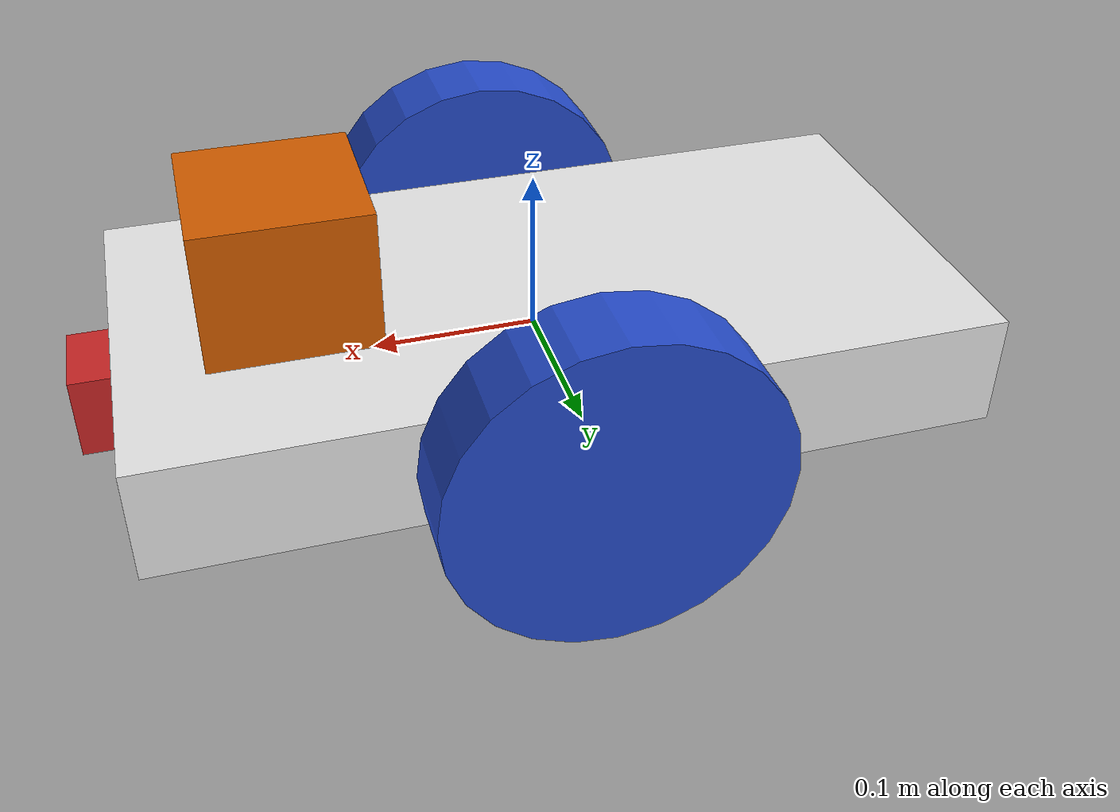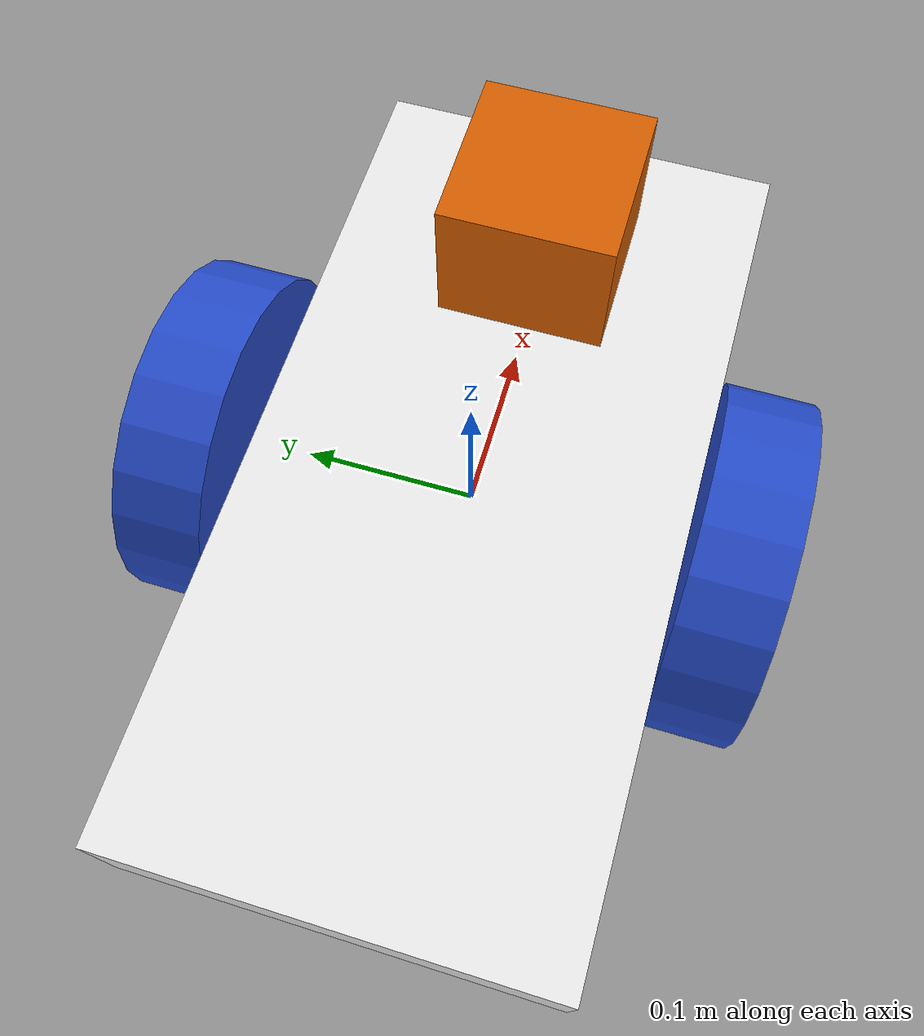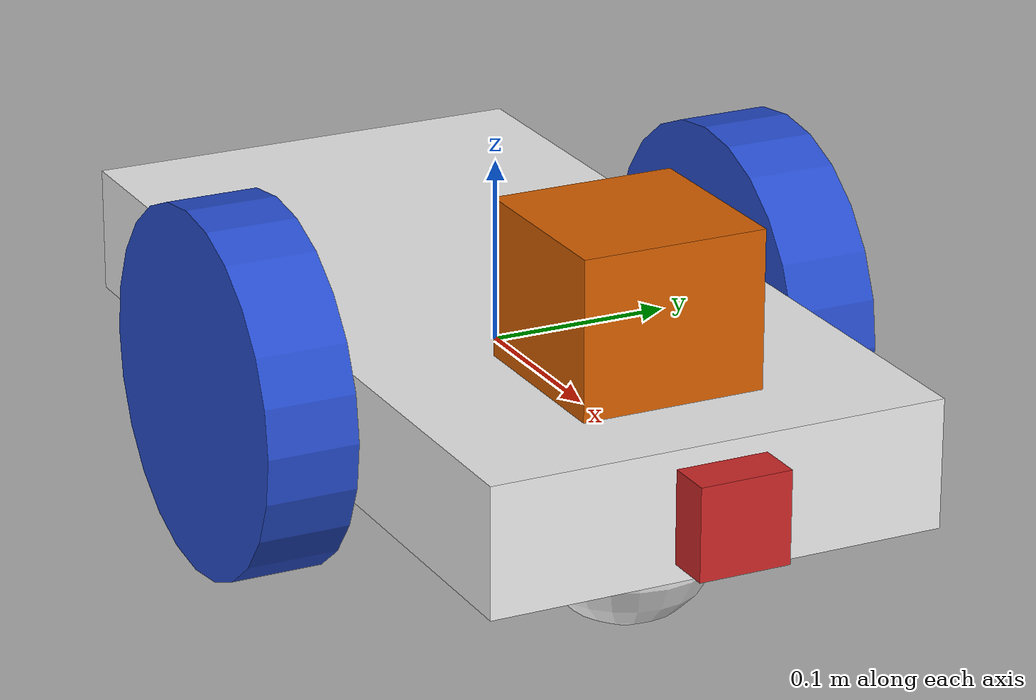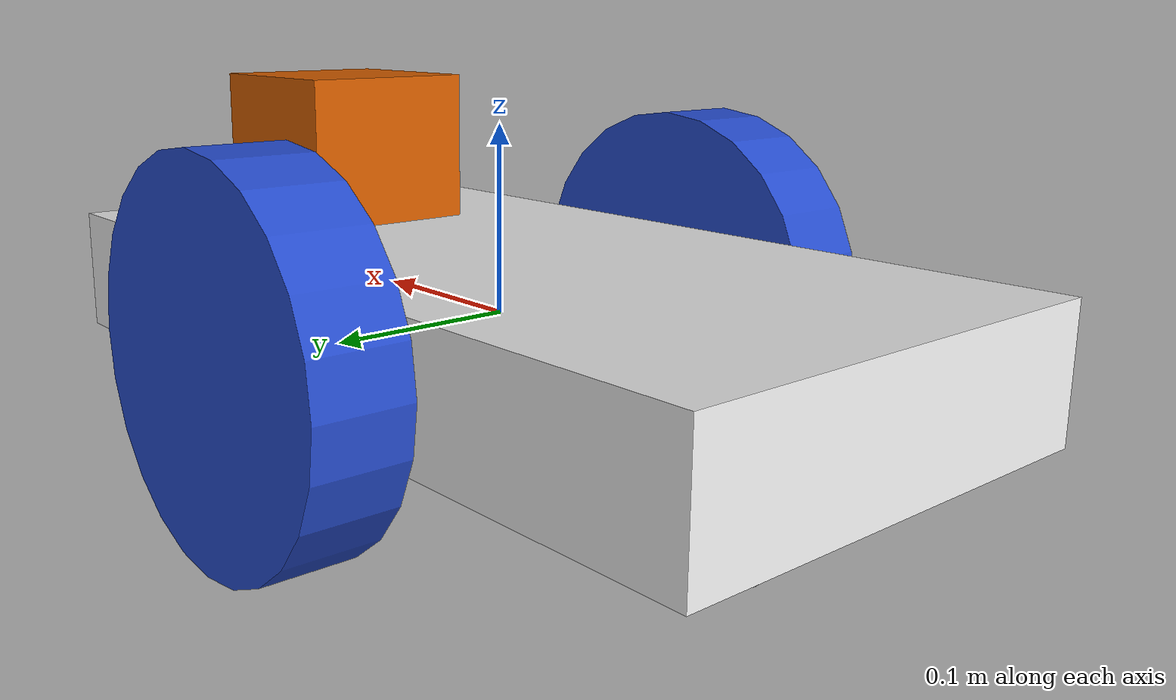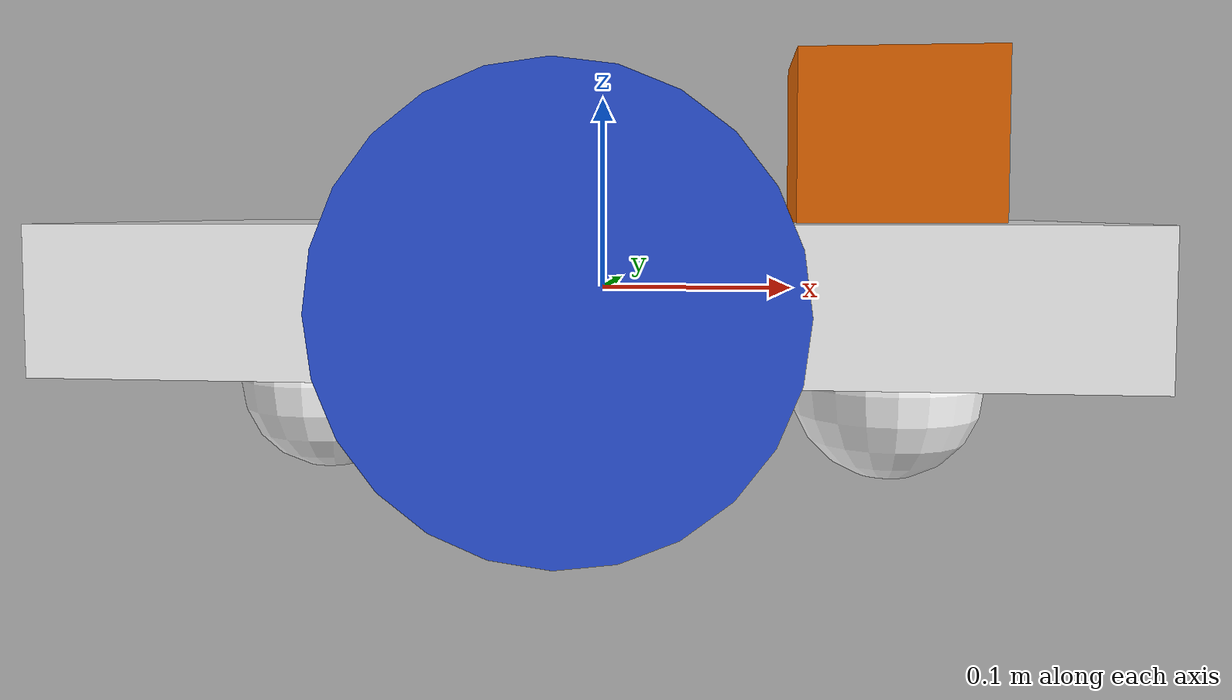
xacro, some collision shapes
<?xml version='1.0'?>

<robot name="my_robot" xmlns:xacro="http://www.ros.org/wiki/xacro">
  <xacro:include filename="$(find my_robot)/urdf/my_robot.gazebo" />
  <link name="robot_footprint"></link>

  <joint name="robot_footprint_joint" type="fixed">
    <origin xyz="0 0 0" rpy="0 0 0" />
    <parent link="robot_footprint"/>
    <child link="chassis" />
  </joint>

  <link name='chassis'>
    <pose>0 0 0.1 0 0 0</pose>

    <inertial>
      <mass value="15.0"/>
      <origin xyz="0.0 0 0" rpy=" 0 0 0"/>
      <inertia
          ixx="0.1" ixy="0" ixz="0"
          iyy="0.1" iyz="0"
          izz="0.1"
      />
    </inertial>

    <collision name='collision'>
      <origin xyz="0 0 0" rpy=" 0 0 0"/>
      <geometry>
        <box size=".5 .25 .07"/>
      </geometry>
    </collision>

    <visual name='chassis_visual'>
      <origin xyz="0 0 0" rpy=" 0 0 0"/>
      <geometry>
        <box size=".5 .25 .07"/>
      </geometry>
    </visual>

    <collision name='back_caster_collision'>
      <origin xyz="-0.15 0 -0.05" rpy=" 0 0 0"/>
      <geometry>
        <sphere radius="0.0499"/>
      </geometry>
    </collision>

    <visual name='back_caster_visual'>
      <origin xyz="-0.15 0 -0.05" rpy=" 0 0 0"/>
      <geometry>
        <sphere radius="0.05"/>
      </geometry>
    </visual>

    <collision name='front_caster_collision'>
      <origin xyz="0.15 0 -0.05" rpy=" 0 0 0"/>
      <geometry>
        <sphere radius="0.0499"/>
      </geometry>
    </collision>

    <visual name='front_caster_visual'>
      <origin xyz="0.15 0 -0.05" rpy=" 0 0 0"/>
      <geometry>
        <sphere radius="0.05"/>
      </geometry>
    </visual>

  </link>

  <!--Link (left wheel)-->
   <link name='left_wheel'>
   <inertial>
       <mass value="5"/>
       <origin xyz="0 0 0" rpy="0 1.5707 1.5707" />
       <inertia
             ixx="0.1" ixy="0" ixz="0"
             iyy="0.1" iyz="0"
             izz="0.1"
             />
       </inertial>

   <collision name='left_wheel_collision'>
     <origin xyz="0 0 0" rpy="0 1.5707 1.5707"/>
     <geometry>
          <cylinder length="0.05" radius="0.1"/>
     </geometry>
     </collision>

   <visual name='left_wheel_visual'>
      <origin xyz="0 0 0" rpy="0 1.5707 1.5707"/>
      <geometry>
         <cylinder length="0.05" radius="0.1"/>
      </geometry>
      </visual>

  </link>

    <!--joint (left_wheel_hinge)-->
    <joint name="left_wheel_hinge" type="continuous">
        <origin xyz="0 0.15 0" rpy="0 0 0"/>
        <child link="left_wheel" />
        <parent link="chassis"/>
        <axis xyz="0 1 0" rpy="0 0 0" />
        <limit effort="10000" velocity="1000"/>
        <joint_properties damping="1.0" friction="1.0" />
     </joint>

     <!--Link (right wheel)-->
   <link name='right_wheel'>
   <inertial>
       <mass value="5"/>
       <origin xyz="0 0 0" rpy="0 1.5707 1.5707" />
       <inertia
             ixx="0.01354166666" ixy="0" ixz="0"
             iyy="0.01354166666" iyz="0" izz="0.025"
             />
       </inertial>

   <collision name='right_wheel_collision'>
     <origin xyz="0 0 0" rpy="0 1.5707 1.5707"/>
     <geometry>
          <cylinder length="0.05" radius="0.1"/>
     </geometry>
     </collision>

   <visual name='right_wheel_visual'>
      <origin xyz="0 0 0" rpy="0 1.5707 1.5707"/>
      <geometry>
         <cylinder length="0.05" radius="0.1"/>
      </geometry>
      </visual>

  </link>

    <!--joint (right_wheel_hinge)-->
    <joint name="right_wheel_hinge" type="continuous">
        <origin xyz="0 -0.15 0" rpy="0 0 0"/>
        <child link="right_wheel" />
        <parent link="chassis"/>
        <axis xyz="0 1 0" rpy="0 0 0" />
        <limit effort="10000" velocity="1000"/>
        <joint_properties damping="1.0" friction="1.0" />
     </joint>

   <!--Link (camera)-->
  <link name='camera'>
    <inertial>
      <origin xyz="0 0 0" rpy="0 0 0"/>
      <mass value="0.1"/>
      <box_inertia m="0.1" x="0.05" y="0.05" z="0.05"/>
      <inertia
          ixx="1e-6" ixy="0" ixz="0"
          iyy="1e-6" iyz="0"
          izz="1e-6"
      />
    </inertial>

    <!--('camera-visual')-->
    <visual name='camera_visual'>
      <origin xyz="0 0 0" rpy="0 0 0"/>
      <geometry>
        <box size=".05 .05 .05"/>
      </geometry>
    </visual>

    <collision name='camera_collision'>
      <origin xyz="0 0 0" rpy="0 0 0"/>
      <geometry>
        <box size=".05 .05 .05"/>
      </geometry>
    </collision>
  </link>

  <!--Joint (camera)-->
  <joint type="fixed" name="camera_joint">
    <origin xyz="0.25 0 0" rpy="0 0 0"/>
    <child link="camera"/>
    <parent link="chassis"/>
    <axis xyz="0 1 0"/>
  </joint>

   <!--Links(hokuyo)-->
  <link name='hokuyo'>
    <inertial>
      <origin xyz="0 0 0" rpy="0 0 0"/>
      <mass value="1e-5"/>
      <inertia
          ixx="1e-6" ixy="0" ixz="0"
          iyy="1e-6" iyz="0"
          izz="1e-6"
      />
    </inertial>

    <visual name='hokuyo_visual'>
      <origin xyz="0 0 0" rpy="0 0 0"/>
      <geometry>
        <mesh filename="package://my_robot/meshes/hokuyo.dae"/>
      </geometry>
    </visual>

    <collision name='hokuyo_collision'>
      <origin xyz="0 0 0" rpy="0 0 0"/>
      <geometry>
        <box size=".1 .1 .1"/>
      </geometry>
    </collision>
  </link>

  <!--Joint (hokuyo)-->
  <joint type="fixed" name="hokuyo_joint">
    <origin xyz="0.15 0 .07" rpy="0 0 0"/>
    <child link="hokuyo"/>
    <parent link="chassis"/>
    <axis xyz="0 1 0"/>
  </joint>

 <!--give your robot some color-->
  <gazebo reference="chassis">
    <material>Gazebo/white</material>
  </gazebo>

  <gazebo reference="left_wheel">
    <material>Gazebo/Blue</material>
  </gazebo>

  <gazebo reference="right_wheel">
    <material>Gazebo/Blue</material>
  </gazebo>

<gazebo reference='camera'>
    <material>Gazebo/Red</material>
  </gazebo>

</robot>
